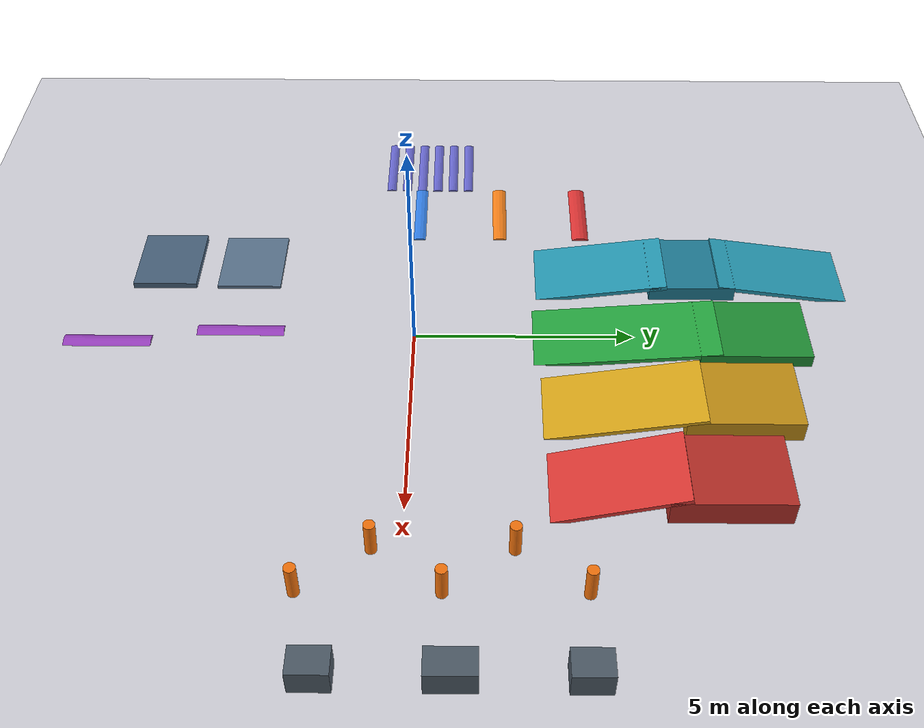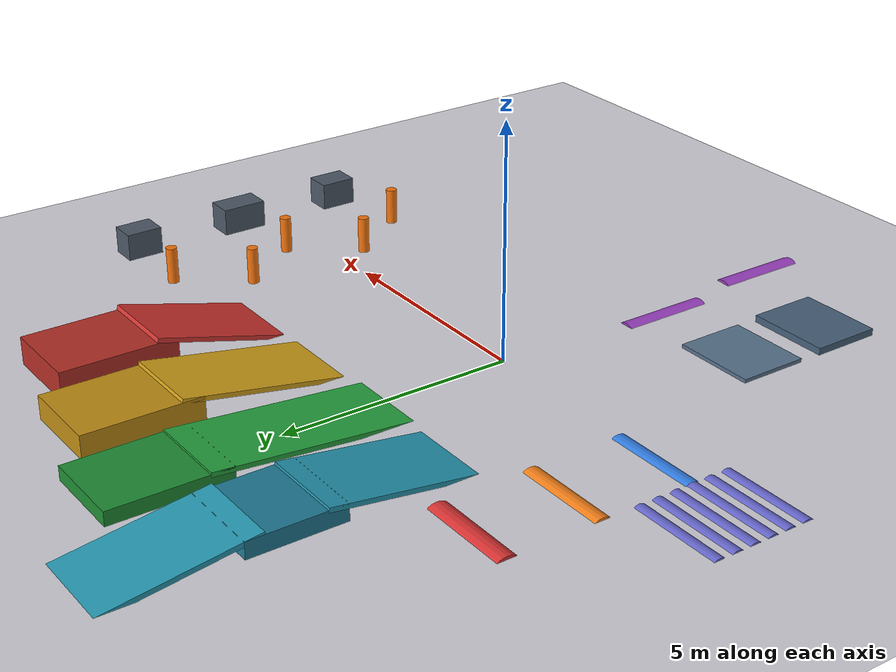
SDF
<?xml version="1.0" ?>
<sdf version="1.6">
  <world name="balance_test_world">
    <!-- 物理引擎参数设置 -->
    <physics name="1ms" type="ignored">
      <max_step_size>0.001</max_step_size>
      <real_time_factor>1.0</real_time_factor>
    </physics>

    <!-- 必须的 Ignition Gazebo 系统插件 -->
    <plugin
      filename="ignition-gazebo-physics-system"
      name="gz::sim::systems::Physics">
    </plugin>
    <plugin
      filename="ignition-gazebo-user-commands-system"
      name="gz::sim::systems::UserCommands">
    </plugin>
    <plugin
      filename="ignition-gazebo-scene-broadcaster-system"
      name="gz::sim::systems::SceneBroadcaster">
    </plugin>
    <plugin
      filename="ignition-gazebo-contact-system"
      name="gz::sim::systems::Contact">
    </plugin>
    <plugin
      filename="ignition-gazebo-imu-system"
      name="ignition::gazebo::systems::Imu">
    </plugin>
    <!-- 外力脉冲插件（4.2.3 推扰实验）：世界级 ApplyLinkWrench，
         通过 /world/balance_test_world/wrench 话题接收 EntityWrench 消息，
         对指定 link 施加力/力矩。不发布时对仿真行为无任何影响。 -->
    <plugin
      filename="ignition-gazebo-apply-link-wrench-system"
      name="ignition::gazebo::systems::ApplyLinkWrench">
    </plugin>

    <!-- 环境光照 -->
    <light type="directional" name="sun">
      <cast_shadows>true</cast_shadows>
      <pose>0 0 15 0 0 0</pose>
      <diffuse>0.9 0.9 0.9 1</diffuse>
      <specular>0.3 0.3 0.3 1</specular>
      <attenuation>
        <range>1000</range>
        <constant>0.9</constant>
        <linear>0.01</linear>
        <quadratic>0.001</quadratic>
      </attenuation>
      <direction>-0.4 0.2 -0.9</direction>
    </light>

    <!-- 基础平坦地面 -->
    <model name="ground_plane">
      <static>true</static>
      <link name="link">
        <collision name="collision">
          <geometry>
            <plane>
              <normal>0 0 1</normal>
              <size>100 100</size>
            </plane>
          </geometry>
          <surface>
            <friction>
              <ode>
                <mu>1.0</mu>
                <mu2>1.0</mu2>
              </ode>
            </friction>
          </surface>
        </collision>
        <visual name="visual">
          <geometry>
            <plane>
              <normal>0 0 1</normal>
              <size>100 100</size>
            </plane>
          </geometry>
          <material>
            <ambient>0.82 0.82 0.85 1.0</ambient>
            <diffuse>0.82 0.82 0.85 1.0</diffuse>
            <specular>0.2 0.2 0.2 1.0</specular>
          </material>
        </visual>
      </link>
    </model>

    <!-- 测试区 1：多梯度斜坡与过桥坡道 (Y > 2.0, 零台阶无缝过渡)          -->

    <!-- 1.1 5° 缓坡道 (绿色, x = 0.0, y 从 3.0 处无缝切入, 平台高 0.30m) -->
    <model name="slope_5deg">
      <static>true</static>
      <link name="link">
        <!-- 爬坡斜板: 宽 1.8m, 长 4.4m, 厚 0.10m, 下端入地实现零台阶 -->
        <collision name="ramp_collision">
          <pose>0.0 4.719 0.100 0.087266 0 0</pose>
          <geometry>
            <box>
              <size>1.8 4.40 0.10</size>
            </box>
          </geometry>
          <surface>
            <friction>
              <ode><mu>1.2</mu><mu2>1.2</mu2></ode>
            </friction>
          </surface>
        </collision>
        <visual name="ramp_visual">
          <pose>0.0 4.719 0.100 0.087266 0 0</pose>
          <geometry>
            <box>
              <size>1.8 4.40 0.10</size>
            </box>
          </geometry>
          <material>
            <ambient>0.15 0.65 0.25 1.0</ambient>
            <diffuse>0.15 0.65 0.25 1.0</diffuse>
            <specular>0.3 0.3 0.3 1.0</specular>
          </material>
        </visual>

        <!-- 坡顶平坦驻留台: 宽 1.8m, 长 2.5m, 高 0.30m -->
        <collision name="platform_collision">
          <pose>0.0 7.679 0.150 0 0 0</pose>
          <geometry>
            <box>
              <size>1.8 2.5 0.30</size>
            </box>
          </geometry>
          <surface>
            <friction>
              <ode><mu>1.2</mu><mu2>1.2</mu2></ode>
            </friction>
          </surface>
        </collision>
        <visual name="platform_visual">
          <pose>0.0 7.679 0.150 0 0 0</pose>
          <geometry>
            <box>
              <size>1.8 2.5 0.30</size>
            </box>
          </geometry>
          <material>
            <ambient>0.12 0.55 0.20 1.0</ambient>
            <diffuse>0.12 0.55 0.20 1.0</diffuse>
            <specular>0.3 0.3 0.3 1.0</specular>
          </material>
        </visual>
      </link>
    </model>

    <!-- 1.2 10° 中坡道 (黄色, x = 2.2, y 从 3.0 处无缝切入, 平台高 0.50m) -->
    <model name="slope_10deg">
      <static>true</static>
      <link name="link">
        <collision name="ramp_collision">
          <pose>2.2 4.426 0.201 0.174533 0 0</pose>
          <geometry>
            <box>
              <size>1.8 3.80 0.10</size>
            </box>
          </geometry>
          <surface>
            <friction>
              <ode><mu>1.2</mu><mu2>1.2</mu2></ode>
            </friction>
          </surface>
        </collision>
        <visual name="ramp_visual">
          <pose>2.2 4.426 0.201 0.174533 0 0</pose>
          <geometry>
            <box>
              <size>1.8 3.80 0.10</size>
            </box>
          </geometry>
          <material>
            <ambient>0.85 0.65 0.10 1.0</ambient>
            <diffuse>0.85 0.65 0.10 1.0</diffuse>
            <specular>0.3 0.3 0.3 1.0</specular>
          </material>
        </visual>

        <!-- 坡顶平坦驻留台 -->
        <collision name="platform_collision">
          <pose>2.2 7.086 0.250 0 0 0</pose>
          <geometry>
            <box>
              <size>1.8 2.5 0.50</size>
            </box>
          </geometry>
          <surface>
            <friction>
              <ode><mu>1.2</mu><mu2>1.2</mu2></ode>
            </friction>
          </surface>
        </collision>
        <visual name="platform_visual">
          <pose>2.2 7.086 0.250 0 0 0</pose>
          <geometry>
            <box>
              <size>1.8 2.5 0.50</size>
            </box>
          </geometry>
          <material>
            <ambient>0.75 0.55 0.08 1.0</ambient>
            <diffuse>0.75 0.55 0.08 1.0</diffuse>
            <specular>0.3 0.3 0.3 1.0</specular>
          </material>
        </visual>
      </link>
    </model>

    <!-- 1.3 15° 陡坡道 (红色, x = 4.4, y 从 3.0 处无缝切入, 平台高 0.60m) -->
    <model name="slope_15deg">
      <static>true</static>
      <link name="link">
        <collision name="ramp_collision">
          <pose>4.4 4.132 0.252 0.261799 0 0</pose>
          <geometry>
            <box>
              <size>1.8 3.20 0.10</size>
            </box>
          </geometry>
          <surface>
            <friction>
              <ode><mu>1.3</mu><mu2>1.3</mu2></ode>
            </friction>
          </surface>
        </collision>
        <visual name="ramp_visual">
          <pose>4.4 4.132 0.252 0.261799 0 0</pose>
          <geometry>
            <box>
              <size>1.8 3.20 0.10</size>
            </box>
          </geometry>
          <material>
            <ambient>0.85 0.22 0.20 1.0</ambient>
            <diffuse>0.85 0.22 0.20 1.0</diffuse>
            <specular>0.3 0.3 0.3 1.0</specular>
          </material>
        </visual>

        <!-- 坡顶平坦驻留台 -->
        <collision name="platform_collision">
          <pose>4.4 6.489 0.300 0 0 0</pose>
          <geometry>
            <box>
              <size>1.8 2.5 0.60</size>
            </box>
          </geometry>
          <surface>
            <friction>
              <ode><mu>1.3</mu><mu2>1.3</mu2></ode>
            </friction>
          </surface>
        </collision>
        <visual name="platform_visual">
          <pose>4.4 6.489 0.300 0 0 0</pose>
          <geometry>
            <box>
              <size>1.8 2.5 0.60</size>
            </box>
          </geometry>
          <material>
            <ambient>0.70 0.18 0.15 1.0</ambient>
            <diffuse>0.70 0.18 0.15 1.0</diffuse>
            <specular>0.3 0.3 0.3 1.0</specular>
          </material>
        </visual>
      </link>
    </model>

    <!-- 1.4 过桥坡道 (青色, x = -2.2, 上坡 8° -> 平台 0.35m -> 下坡 8°) -->
    <model name="bridge_overpass">
      <static>true</static>
      <link name="link">
        <!-- 上坡: y 从 3.0 处无缝切入 -->
        <collision name="up_ramp_collision">
          <pose>-2.2 4.252 0.125 0.139626 0 0</pose>
          <geometry>
            <box>
              <size>1.8 3.30 0.10</size>
            </box>
          </geometry>
          <surface>
            <friction>
              <ode><mu>1.2</mu><mu2>1.2</mu2></ode>
            </friction>
          </surface>
        </collision>
        <visual name="up_ramp_visual">
          <pose>-2.2 4.252 0.125 0.139626 0 0</pose>
          <geometry>
            <box>
              <size>1.8 3.30 0.10</size>
            </box>
          </geometry>
          <material>
            <ambient>0.15 0.60 0.70 1.0</ambient>
            <diffuse>0.15 0.60 0.70 1.0</diffuse>
            <specular>0.3 0.3 0.3 1.0</specular>
          </material>
        </visual>

        <!-- 桥面平坦区: y: 5.49 ~ 7.49 -->
        <collision name="deck_collision">
          <pose>-2.2 6.490 0.175 0 0 0</pose>
          <geometry>
            <box>
              <size>1.8 2.0 0.350</size>
            </box>
          </geometry>
          <surface>
            <friction>
              <ode><mu>1.2</mu><mu2>1.2</mu2></ode>
            </friction>
          </surface>
        </collision>
        <visual name="deck_visual">
          <pose>-2.2 6.490 0.175 0 0 0</pose>
          <geometry>
            <box>
              <size>1.8 2.0 0.350</size>
            </box>
          </geometry>
          <material>
            <ambient>0.12 0.48 0.58 1.0</ambient>
            <diffuse>0.12 0.48 0.58 1.0</diffuse>
            <specular>0.3 0.3 0.3 1.0</specular>
          </material>
        </visual>

        <!-- 下坡: y 从 7.49 处无缝下降至地面 9.98 -->
        <collision name="down_ramp_collision">
          <pose>-2.2 8.728 0.125 -0.139626 0 0</pose>
          <geometry>
            <box>
              <size>1.8 3.30 0.10</size>
            </box>
          </geometry>
          <surface>
            <friction>
              <ode><mu>1.2</mu><mu2>1.2</mu2></ode>
            </friction>
          </surface>
        </collision>
        <visual name="down_ramp_visual">
          <pose>-2.2 8.728 0.125 -0.139626 0 0</pose>
          <geometry>
            <box>
              <size>1.8 3.30 0.10</size>
            </box>
          </geometry>
          <material>
            <ambient>0.15 0.60 0.70 1.0</ambient>
            <diffuse>0.15 0.60 0.70 1.0</diffuse>
            <specular>0.3 0.3 0.3 1.0</specular>
          </material>
        </visual>
      </link>
    </model>

    <!-- 测试区 2：减速带与冲击台阶 (X in [-4.5, -6.5])                    -->

    <!-- 2.1 平滑圆弧减速带 (半入地圆柱实现平滑切入与真实冲击) -->
    <model name="speed_bumps_lane">
      <static>true</static>
      <link name="link">
        <!-- 减速带 1: 1.5 cm 凸起弧面 (圆柱 R=0.30m, 中心 z=-0.285m) -->
        <collision name="bump_1_5cm_coll">
          <pose>-4.5 0.0 -0.285 0 1.5707963 0</pose>
          <geometry>
            <cylinder>
              <radius>0.30</radius>
              <length>2.0</length>
            </cylinder>
          </geometry>
        </collision>
        <visual name="bump_1_5cm_vis">
          <pose>-4.5 0.0 -0.285 0 1.5707963 0</pose>
          <geometry>
            <cylinder>
              <radius>0.30</radius>
              <length>2.0</length>
            </cylinder>
          </geometry>
          <material>
            <ambient>0.20 0.50 0.90 1.0</ambient>
            <diffuse>0.20 0.50 0.90 1.0</diffuse>
          </material>
        </visual>

        <!-- 减速带 2: 3.0 cm 凸起弧面 (圆柱 R=0.30m, 中心 z=-0.270m) -->
        <collision name="bump_3cm_coll">
          <pose>-4.5 2.0 -0.270 0 1.5707963 0</pose>
          <geometry>
            <cylinder>
              <radius>0.30</radius>
              <length>2.0</length>
            </cylinder>
          </geometry>
        </collision>
        <visual name="bump_3cm_vis">
          <pose>-4.5 2.0 -0.270 0 1.5707963 0</pose>
          <geometry>
            <cylinder>
              <radius>0.30</radius>
              <length>2.0</length>
            </cylinder>
          </geometry>
          <material>
            <ambient>0.95 0.50 0.10 1.0</ambient>
            <diffuse>0.95 0.50 0.10 1.0</diffuse>
          </material>
        </visual>

        <!-- 减速带 3: 4.5 cm 凸起弧面 (圆柱 R=0.35m, 中心 z=-0.305m) -->
        <collision name="bump_4_5cm_coll">
          <pose>-4.5 4.0 -0.305 0 1.5707963 0</pose>
          <geometry>
            <cylinder>
              <radius>0.35</radius>
              <length>2.0</length>
            </cylinder>
          </geometry>
        </collision>
        <visual name="bump_4_5cm_vis">
          <pose>-4.5 4.0 -0.305 0 1.5707963 0</pose>
          <geometry>
            <cylinder>
              <radius>0.35</radius>
              <length>2.0</length>
            </cylinder>
          </geometry>
          <material>
            <ambient>0.85 0.20 0.20 1.0</ambient>
            <diffuse>0.85 0.20 0.20 1.0</diffuse>
          </material>
        </visual>
      </link>
    </model>

    <!-- 2.2 连续波浪凸起路面 (Rumble Strip, 通道 x = -6.5, 圆弧截面 1.5cm) -->
    <model name="rumble_strip">
      <static>true</static>
      <link name="link">
        <collision name="r_bump_1_coll"><pose>-6.5 -0.8 -0.185 0 1.5707963 0</pose><geometry><cylinder><radius>0.20</radius><length>2.0</length></cylinder></geometry></collision>
        <visual name="r_bump_1_vis"><pose>-6.5 -0.8 -0.185 0 1.5707963 0</pose><geometry><cylinder><radius>0.20</radius><length>2.0</length></cylinder></geometry><material><ambient>0.4 0.4 0.8 1.0</ambient><diffuse>0.4 0.4 0.8 1.0</diffuse></material></visual>

        <collision name="r_bump_2_coll"><pose>-6.5 -0.4 -0.185 0 1.5707963 0</pose><geometry><cylinder><radius>0.20</radius><length>2.0</length></cylinder></geometry></collision>
        <visual name="r_bump_2_vis"><pose>-6.5 -0.4 -0.185 0 1.5707963 0</pose><geometry><cylinder><radius>0.20</radius><length>2.0</length></cylinder></geometry><material><ambient>0.4 0.4 0.8 1.0</ambient><diffuse>0.4 0.4 0.8 1.0</diffuse></material></visual>

        <collision name="r_bump_3_coll"><pose>-6.5 0.0 -0.185 0 1.5707963 0</pose><geometry><cylinder><radius>0.20</radius><length>2.0</length></cylinder></geometry></collision>
        <visual name="r_bump_3_vis"><pose>-6.5 0.0 -0.185 0 1.5707963 0</pose><geometry><cylinder><radius>0.20</radius><length>2.0</length></cylinder></geometry><material><ambient>0.4 0.4 0.8 1.0</ambient><diffuse>0.4 0.4 0.8 1.0</diffuse></material></visual>

        <collision name="r_bump_4_coll"><pose>-6.5 0.4 -0.185 0 1.5707963 0</pose><geometry><cylinder><radius>0.20</radius><length>2.0</length></cylinder></geometry></collision>
        <visual name="r_bump_4_vis"><pose>-6.5 0.4 -0.185 0 1.5707963 0</pose><geometry><cylinder><radius>0.20</radius><length>2.0</length></cylinder></geometry><material><ambient>0.4 0.4 0.8 1.0</ambient><diffuse>0.4 0.4 0.8 1.0</diffuse></material></visual>

        <collision name="r_bump_5_coll"><pose>-6.5 0.8 -0.185 0 1.5707963 0</pose><geometry><cylinder><radius>0.20</radius><length>2.0</length></cylinder></geometry></collision>
        <visual name="r_bump_5_vis"><pose>-6.5 0.8 -0.185 0 1.5707963 0</pose><geometry><cylinder><radius>0.20</radius><length>2.0</length></cylinder></geometry><material><ambient>0.4 0.4 0.8 1.0</ambient><diffuse>0.4 0.4 0.8 1.0</diffuse></material></visual>

        <collision name="r_bump_6_coll"><pose>-6.5 1.2 -0.185 0 1.5707963 0</pose><geometry><cylinder><radius>0.20</radius><length>2.0</length></cylinder></geometry></collision>
        <visual name="r_bump_6_vis"><pose>-6.5 1.2 -0.185 0 1.5707963 0</pose><geometry><cylinder><radius>0.20</radius><length>2.0</length></cylinder></geometry><material><ambient>0.4 0.4 0.8 1.0</ambient><diffuse>0.4 0.4 0.8 1.0</diffuse></material></visual>
      </link>
    </model>

    <!-- 测试区 3：蛇形绕桩与静态障碍巷道 (X in [6.0, 9.0])                 -->

    <!-- 3.1 蛇形避障桩阵列 (Slalom Poles, 橙色柱群, 半径 0.12m, 高 0.8m) -->
    <model name="slalom_course">
      <static>true</static>
      <link name="link">
        <collision name="pole_1_coll"><pose>7.0 -2.0 0.4 0 0 0</pose><geometry><cylinder><radius>0.12</radius><length>0.8</length></cylinder></geometry></collision>
        <visual name="pole_1_vis"><pose>7.0 -2.0 0.4 0 0 0</pose><geometry><cylinder><radius>0.12</radius><length>0.8</length></cylinder></geometry><material><ambient>0.95 0.45 0.05 1.0</ambient><diffuse>0.95 0.45 0.05 1.0</diffuse></material></visual>

        <collision name="pole_2_coll"><pose>6.0 -0.6 0.4 0 0 0</pose><geometry><cylinder><radius>0.12</radius><length>0.8</length></cylinder></geometry></collision>
        <visual name="pole_2_vis"><pose>6.0 -0.6 0.4 0 0 0</pose><geometry><cylinder><radius>0.12</radius><length>0.8</length></cylinder></geometry><material><ambient>0.95 0.45 0.05 1.0</ambient><diffuse>0.95 0.45 0.05 1.0</diffuse></material></visual>

        <collision name="pole_3_coll"><pose>7.0 0.8 0.4 0 0 0</pose><geometry><cylinder><radius>0.12</radius><length>0.8</length></cylinder></geometry></collision>
        <visual name="pole_3_vis"><pose>7.0 0.8 0.4 0 0 0</pose><geometry><cylinder><radius>0.12</radius><length>0.8</length></cylinder></geometry><material><ambient>0.95 0.45 0.05 1.0</ambient><diffuse>0.95 0.45 0.05 1.0</diffuse></material></visual>

        <collision name="pole_4_coll"><pose>6.0 2.2 0.4 0 0 0</pose><geometry><cylinder><radius>0.12</radius><length>0.8</length></cylinder></geometry></collision>
        <visual name="pole_4_vis"><pose>6.0 2.2 0.4 0 0 0</pose><geometry><cylinder><radius>0.12</radius><length>0.8</length></cylinder></geometry><material><ambient>0.95 0.45 0.05 1.0</ambient><diffuse>0.95 0.45 0.05 1.0</diffuse></material></visual>

        <collision name="pole_5_coll"><pose>7.0 3.6 0.4 0 0 0</pose><geometry><cylinder><radius>0.12</radius><length>0.8</length></cylinder></geometry></collision>
        <visual name="pole_5_vis"><pose>7.0 3.6 0.4 0 0 0</pose><geometry><cylinder><radius>0.12</radius><length>0.8</length></cylinder></geometry><material><ambient>0.95 0.45 0.05 1.0</ambient><diffuse>0.95 0.45 0.05 1.0</diffuse></material></visual>
      </link>
    </model>

    <!-- 3.2 狭窄障碍通道与静态箱体 (深灰色方箱) -->
    <model name="barrier_blocks">
      <static>true</static>
      <link name="link">
        <collision name="box_1_coll"><pose>8.8 -1.5 0.3 0 0 0</pose><geometry><box><size>0.6 0.8 0.6</size></box></geometry></collision>
        <visual name="box_1_vis"><pose>8.8 -1.5 0.3 0 0 0</pose><geometry><box><size>0.6 0.8 0.6</size></box></geometry><material><ambient>0.3 0.35 0.4 1.0</ambient><diffuse>0.3 0.35 0.4 1.0</diffuse></material></visual>

        <collision name="box_2_coll"><pose>8.8 1.0 0.3 0 0 0</pose><geometry><box><size>0.6 1.0 0.6</size></box></geometry></collision>
        <visual name="box_2_vis"><pose>8.8 1.0 0.3 0 0 0</pose><geometry><box><size>0.6 1.0 0.6</size></box></geometry><material><ambient>0.3 0.35 0.4 1.0</ambient><diffuse>0.3 0.35 0.4 1.0</diffuse></material></visual>

        <collision name="box_3_coll"><pose>8.8 3.5 0.3 0 0 0</pose><geometry><box><size>0.6 0.8 0.6</size></box></geometry></collision>
        <visual name="box_3_vis"><pose>8.8 3.5 0.3 0 0 0</pose><geometry><box><size>0.6 0.8 0.6</size></box></geometry><material><ambient>0.3 0.35 0.4 1.0</ambient><diffuse>0.3 0.35 0.4 1.0</diffuse></material></visual>
      </link>
    </model>

    <!-- 测试区 4：单边高差扰动与跳跃台阶 (Y < -2.0)                       -->

    <!-- 4.1 单边轮凸起扰动带 (紫色, 圆弧切面平滑进入, 测试 Roll 稳定性) -->
    <!-- 轮间距 0.364m, 车身在 x=0 时左右轮位于 x=±0.182m -->
    <model name="asymmetric_bumps">
      <static>true</static>
      <link name="link">
        <!-- 4.1.1 左轮单侧 3cm 凸起圆弧 (y = -3.0 ~ -5.0) -->
        <collision name="left_wheel_bump_coll">
          <pose>-0.182 -4.0 -0.270 1.5707963 0 0</pose>
          <geometry>
            <cylinder>
              <radius>0.30</radius>
              <length>2.0</length>
            </cylinder>
          </geometry>
        </collision>
        <visual name="left_wheel_bump_vis">
          <pose>-0.182 -4.0 -0.270 1.5707963 0 0</pose>
          <geometry>
            <cylinder>
              <radius>0.30</radius>
              <length>2.0</length>
            </cylinder>
          </geometry>
          <material>
            <ambient>0.60 0.25 0.75 1.0</ambient>
            <diffuse>0.60 0.25 0.75 1.0</diffuse>
          </material>
        </visual>

        <!-- 4.1.2 右轮单侧 4cm 凸起圆弧 (y = -6.0 ~ -8.0) -->
        <collision name="right_wheel_bump_coll">
          <pose>0.182 -7.0 -0.260 1.5707963 0 0</pose>
          <geometry>
            <cylinder>
              <radius>0.30</radius>
              <length>2.0</length>
            </cylinder>
          </geometry>
        </collision>
        <visual name="right_wheel_bump_vis">
          <pose>0.182 -7.0 -0.260 1.5707963 0 0</pose>
          <geometry>
            <cylinder>
              <radius>0.30</radius>
              <length>2.0</length>
            </cylinder>
          </geometry>
          <material>
            <ambient>0.60 0.25 0.75 1.0</ambient>
            <diffuse>0.60 0.25 0.75 1.0</diffuse>
          </material>
        </visual>
      </link>
    </model>

    <!-- 4.2 阶梯跳跃测试台 (通道 x = -2.5, y < -3.0, 配合跳跃控制器) -->
    <model name="jump_steps">
      <static>true</static>
      <link name="link">
        <!-- 8cm 台阶 (低高度跳跃) -->
        <collision name="step_8cm_coll">
          <pose>-2.5 -4.0 0.04 0 0 0</pose>
          <geometry>
            <box>
              <size>1.8 1.5 0.08</size>
            </box>
          </geometry>
        </collision>
        <visual name="step_8cm_vis">
          <pose>-2.5 -4.0 0.04 0 0 0</pose>
          <geometry>
            <box>
              <size>1.8 1.5 0.08</size>
            </box>
          </geometry>
          <material>
            <ambient>0.35 0.45 0.55 1.0</ambient>
            <diffuse>0.35 0.45 0.55 1.0</diffuse>
          </material>
        </visual>

        <!-- 15cm 台阶 (中高度跳跃) -->
        <collision name="step_15cm_coll">
          <pose>-2.5 -6.0 0.075 0 0 0</pose>
          <geometry>
            <box>
              <size>1.8 1.5 0.15</size>
            </box>
          </geometry>
        </collision>
        <visual name="step_15cm_vis">
          <pose>-2.5 -6.0 0.075 0 0 0</pose>
          <geometry>
            <box>
              <size>1.8 1.5 0.15</size>
            </box>
          </geometry>
          <material>
            <ambient>0.28 0.38 0.48 1.0</ambient>
            <diffuse>0.28 0.38 0.48 1.0</diffuse>
          </material>
        </visual>
      </link>
    </model>

  </world>
</sdf>
